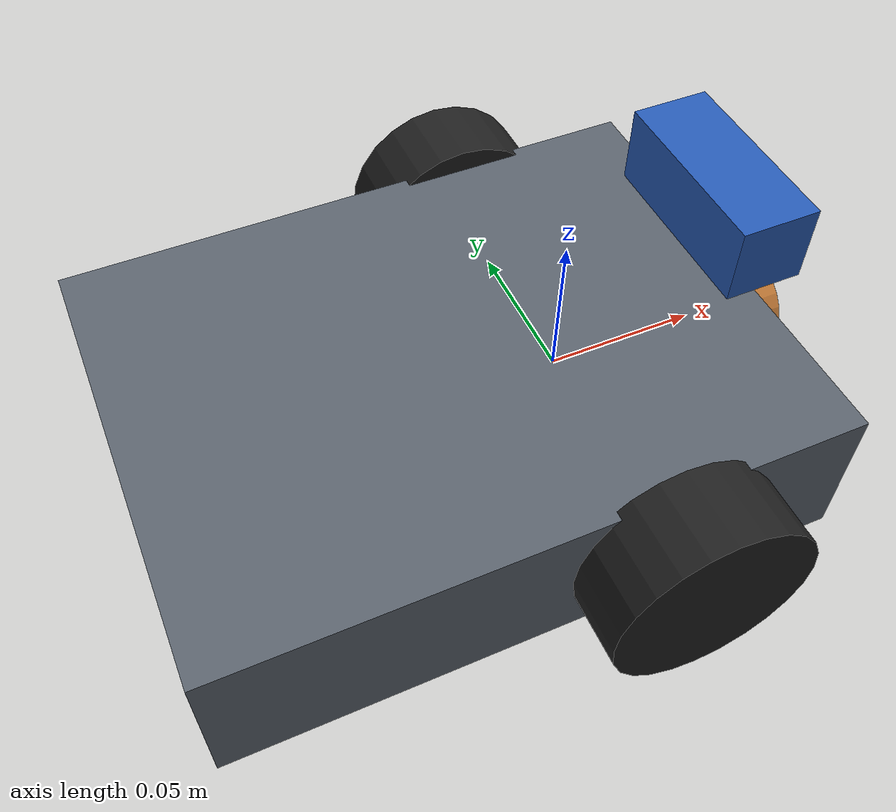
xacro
<?xml version="1.0"?>
<robot xmlns:xacro="http://www.ros.org/wiki/xacro" name="fire_resq">

  <xacro:include filename="$(find fire_resq_description)/urdf/parameters.xacro"/>
  <xacro:include filename="$(find fire_resq_description)/urdf/materials.xacro"/>
  <xacro:include filename="$(find fire_resq_description)/urdf/inertia.xacro"/>

  <xacro:include filename="$(find fire_resq_description)/urdf/base.xacro"/>
  <xacro:include filename="$(find fire_resq_description)/urdf/wheels.xacro"/>
  <xacro:include filename="$(find fire_resq_description)/urdf/sensors.xacro"/>
  <xacro:include filename="$(find fire_resq_description)/urdf/magnet.xacro"/>

</robot>

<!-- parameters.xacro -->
<robot xmlns:xacro="http://www.ros.org/wiki/xacro">

  <!-- ============ chassis ============ -->
  <xacro:property name="chassis_length" value="0.20"/>
  <xacro:property name="chassis_width"  value="0.15"/>
  <xacro:property name="chassis_height" value="0.05"/>
  <!-- TODO(hardware): exact chassis dimensions and mass budget (Hardware.md section 14). -->
  <xacro:property name="chassis_mass"   value="1.20"/>

  <!-- ============ drive wheels ============ -->
  <xacro:property name="wheel_radius"     value="0.0325"/>
  <xacro:property name="wheel_width"      value="0.026"/>
  <xacro:property name="wheel_separation" value="0.17"/>
  <xacro:property name="wheel_mass"       value="0.05"/>
  <!-- Chassis centre relative to the axle (negative = behind it). Puts the centre of mass
       behind the axle so the caster carries load and the robot cannot tip nose-down. -->
  <xacro:property name="chassis_x_offset" value="-0.04"/>

  <!-- ============ drive limits ============ -->
  <xacro:property name="max_linear_velocity"      value="0.30"/>
  <xacro:property name="max_angular_velocity"     value="1.50"/>
  <xacro:property name="max_linear_acceleration"  value="1.00"/>
  <xacro:property name="max_angular_acceleration" value="3.00"/>

  <!-- ============ passive caster ============ -->
  <!-- One caster only. Hardware.md section 2: "no 4WD, no steering mechanism". -->
  <xacro:property name="caster_radius" value="0.015"/>
  <xacro:property name="caster_mass"   value="0.02"/>
  <xacro:property name="caster_x"      value="-0.11"/>

  <!-- ============ camera mount ============ -->
  <!-- TODO(hardware): camera mounting height, tilt and FOV depend on the chosen camera,
       which is still an open decision (RGB vs RGB-D). Implementation_Plan.md section 16. -->
  <xacro:property name="camera_x"     value="0.05"/>
  <xacro:property name="camera_z"     value="0.055"/>
  <xacro:property name="camera_pitch" value="0.0"/>
  <xacro:property name="camera_size"  value="0.025"/>
  <xacro:property name="camera_mass"  value="0.05"/>

  <!-- ============ electromagnet mount ============ -->
  <xacro:property name="magnet_x"      value="0.065"/>
  <xacro:property name="magnet_z"      value="0.0"/>
  <xacro:property name="magnet_radius" value="0.018"/>
  <xacro:property name="magnet_length" value="0.02"/>
  <xacro:property name="magnet_mass"   value="0.08"/>

  <!-- ============ odometry / encoders ============ -->
  <xacro:property name="encoder_ticks_per_rev" value="0"/>

</robot>

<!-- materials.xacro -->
<!-- Visual materials only. Gazebo-specific materials live in the simulation package. -->
<robot xmlns:xacro="http://www.ros.org/wiki/xacro">
  <material name="chassis_grey"><color rgba="0.35 0.38 0.42 1.0"/></material>
  <material name="wheel_black"><color rgba="0.12 0.12 0.12 1.0"/></material>
  <material name="caster_silver"><color rgba="0.65 0.65 0.68 1.0"/></material>
  <material name="camera_blue"><color rgba="0.15 0.35 0.70 1.0"/></material>
  <material name="magnet_copper"><color rgba="0.72 0.45 0.20 1.0"/></material>
</robot>

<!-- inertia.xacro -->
<robot xmlns:xacro="http://www.ros.org/wiki/xacro">

  <xacro:macro name="box_inertia" params="m x y z ox:=0.0">
    <inertial>
      <!-- ox: centre-of-mass offset along x from the link origin. -->
      <origin xyz="${ox} 0 0" rpy="0 0 0"/>
      <mass value="${m}"/>
      <inertia ixx="${m*(y*y+z*z)/12.0}" ixy="0.0" ixz="0.0"
               iyy="${m*(x*x+z*z)/12.0}" iyz="0.0"
               izz="${m*(x*x+y*y)/12.0}"/>
    </inertial>
  </xacro:macro>

  <xacro:macro name="cylinder_inertia" params="m r h">
    <inertial>
      <mass value="${m}"/>
      <inertia ixx="${m*(3.0*r*r+h*h)/12.0}" ixy="0.0" ixz="0.0"
               iyy="${m*(3.0*r*r+h*h)/12.0}" iyz="0.0"
               izz="${m*r*r/2.0}"/>
    </inertial>
  </xacro:macro>

  <xacro:macro name="sphere_inertia" params="m r">
    <inertial>
      <mass value="${m}"/>
      <inertia ixx="${2.0*m*r*r/5.0}" ixy="0.0" ixz="0.0"
               iyy="${2.0*m*r*r/5.0}" iyz="0.0"
               izz="${2.0*m*r*r/5.0}"/>
    </inertial>
  </xacro:macro>

</robot>

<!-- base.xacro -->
<!-- Chassis and the single passive caster. -->
<robot xmlns:xacro="http://www.ros.org/wiki/xacro">

  <link name="base_link">
    <visual>
      <origin xyz="${chassis_x_offset} 0 0" rpy="0 0 0"/>
      <geometry><box size="${chassis_length} ${chassis_width} ${chassis_height}"/></geometry>
      <material name="chassis_grey"/>
    </visual>
    <collision>
      <origin xyz="${chassis_x_offset} 0 0" rpy="0 0 0"/>
      <geometry><box size="${chassis_length} ${chassis_width} ${chassis_height}"/></geometry>
    </collision>
    <xacro:box_inertia m="${chassis_mass}" x="${chassis_length}" y="${chassis_width}" z="${chassis_height}" ox="${chassis_x_offset}"/>
  </link>

  <link name="caster_link">
    <visual>
      <geometry><sphere radius="${caster_radius}"/></geometry>
      <material name="caster_silver"/>
    </visual>
    <collision>
      <geometry><sphere radius="${caster_radius}"/></geometry>
    </collision>
    <xacro:sphere_inertia m="${caster_mass}" r="${caster_radius}"/>
  </link>

  <joint name="caster_joint" type="fixed">
    <parent link="base_link"/>
    <child link="caster_link"/>
    <origin xyz="${caster_x} 0 ${-(wheel_radius - caster_radius)}" rpy="0 0 0"/>
  </joint>

</robot>

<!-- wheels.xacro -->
<robot xmlns:xacro="http://www.ros.org/wiki/xacro">

  <xacro:arg name="wheel_collision" default="cylinder"/>
  <xacro:property name="wheel_collision" value="$(arg wheel_collision)"/>

  <xacro:macro name="drive_wheel" params="prefix reflect">
    <link name="${prefix}_wheel_link">
      <visual>
        <origin xyz="0 0 0" rpy="${pi/2} 0 0"/>
        <geometry><cylinder radius="${wheel_radius}" length="${wheel_width}"/></geometry>
        <material name="wheel_black"/>
      </visual>
      <xacro:if value="${wheel_collision == 'cylinder'}">
        <collision>
          <origin xyz="0 0 0" rpy="${pi/2} 0 0"/>
          <geometry><cylinder radius="${wheel_radius}" length="${wheel_width}"/></geometry>
        </collision>
      </xacro:if>
      <xacro:if value="${wheel_collision == 'sphere'}">
        <collision>
          <origin xyz="0 0 0" rpy="0 0 0"/>
          <geometry><sphere radius="${wheel_radius}"/></geometry>
        </collision>
      </xacro:if>
      <xacro:cylinder_inertia m="${wheel_mass}" r="${wheel_radius}" h="${wheel_width}"/>
    </link>

    <joint name="${prefix}_wheel_joint" type="continuous">
      <parent link="base_link"/>
      <child link="${prefix}_wheel_link"/>
      <origin xyz="0 ${reflect * wheel_separation / 2.0} 0" rpy="0 0 0"/>
      <axis xyz="0 1 0"/>
      <!-- TODO(hardware): joint limits/effort once motor torque and gear ratio are known. -->
    </joint>
  </xacro:macro>

  <xacro:drive_wheel prefix="left"  reflect="1"/>
  <xacro:drive_wheel prefix="right" reflect="-1"/>

</robot>

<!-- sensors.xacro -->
<robot xmlns:xacro="http://www.ros.org/wiki/xacro">

  <!-- Mechanical mount frame. -->
  <link name="camera_link">
    <visual>
      <geometry><box size="${camera_size} ${camera_size*2.4} ${camera_size}"/></geometry>
      <material name="camera_blue"/>
    </visual>
    <collision>
      <geometry><box size="${camera_size} ${camera_size*2.4} ${camera_size}"/></geometry>
    </collision>
    <xacro:box_inertia m="${camera_mass}" x="${camera_size}" y="${camera_size*2.4}" z="${camera_size}"/>
  </link>

  <joint name="camera_joint" type="fixed">
    <parent link="base_link"/>
    <child link="camera_link"/>
    <origin xyz="${camera_x} 0 ${camera_z}" rpy="0 ${camera_pitch} 0"/>
  </joint>

  <link name="camera_optical_frame"/>

  <joint name="camera_optical_joint" type="fixed">
    <parent link="camera_link"/>
    <child link="camera_optical_frame"/>
    <origin xyz="0 0 0" rpy="${-pi/2} 0 ${-pi/2}"/>
  </joint>

</robot>

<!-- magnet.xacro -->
<robot xmlns:xacro="http://www.ros.org/wiki/xacro">

  <link name="magnet_link">
    <visual>
      <origin xyz="0 0 0" rpy="0 ${pi/2} 0"/>
      <geometry><cylinder radius="${magnet_radius}" length="${magnet_length}"/></geometry>
      <material name="magnet_copper"/>
    </visual>
    <collision>
      <origin xyz="0 0 0" rpy="0 ${pi/2} 0"/>
      <geometry><cylinder radius="${magnet_radius}" length="${magnet_length}"/></geometry>
    </collision>
    <xacro:cylinder_inertia m="${magnet_mass}" r="${magnet_radius}" h="${magnet_length}"/>
  </link>

  <joint name="magnet_joint" type="fixed">
    <parent link="base_link"/>
    <child link="magnet_link"/>
    <origin xyz="${magnet_x} 0 ${magnet_z}" rpy="0 0 0"/>
    <!-- TODO(hardware): physical electromagnet interface - MOSFET/relay wiring, coil
         voltage, holding force and the resulting ALIGN standoff tolerance. -->
  </joint>

</robot>
